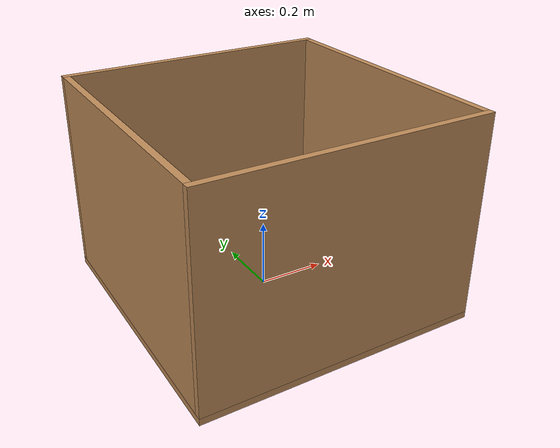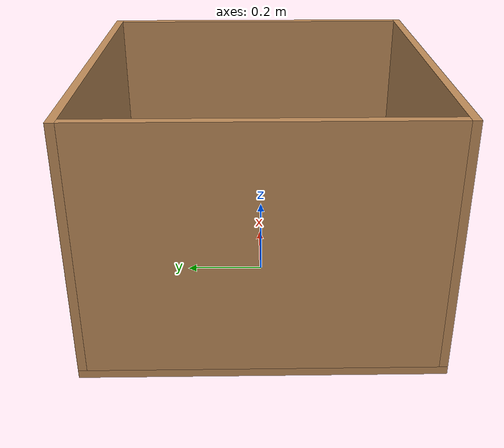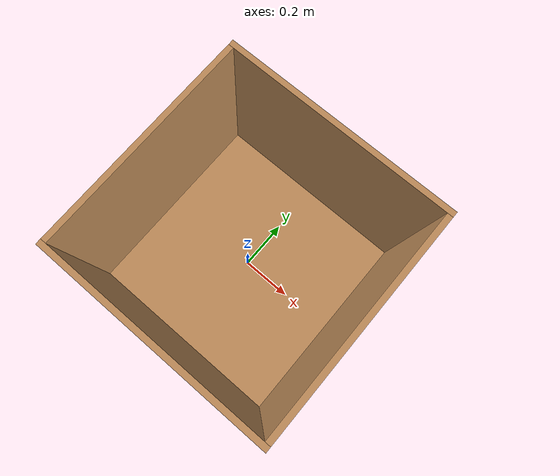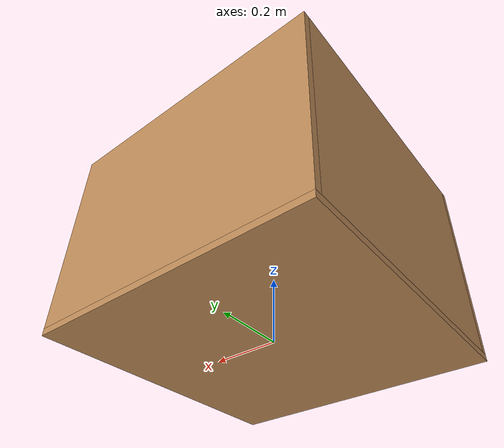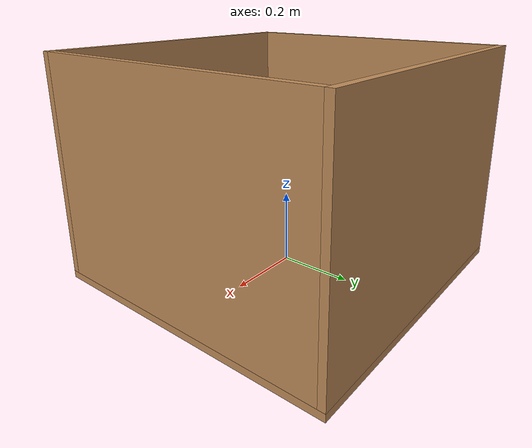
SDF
<?xml version="1.0"?>
<sdf version="1.7" xmlns:drake="http://drake.mit.edu">
  <model name="container">
    <!-- A box container with 4 walls and a floor, inner dimensions 0.8m x 0.8m x 0.6m -->
    <link name="container">
      <!-- Floor: 0.84 x 0.84 x 0.02, top surface at z=0 -->
      <visual name="floor_visual">
        <pose>0 0 -0.01 0 0 0</pose>
        <geometry>
          <box><size>0.84 0.84 0.02</size></box>
        </geometry>
        <material><diffuse>0.75 0.55 0.35 1.0</diffuse></material>
      </visual>
      <collision name="floor_collision">
        <pose>0 0 -0.01 0 0 0</pose>
        <geometry>
          <box><size>0.84 0.84 0.02</size></box>
        </geometry>
      </collision>

      <!-- +x wall -->
      <visual name="wall_px_visual">
        <pose>0.41 0 0.30 0 0 0</pose>
        <geometry>
          <box><size>0.02 0.80 0.60</size></box>
        </geometry>
        <material><diffuse>0.75 0.55 0.35 1.0</diffuse></material>
      </visual>
      <collision name="wall_px_collision">
        <pose>0.41 0 0.30 0 0 0</pose>
        <geometry>
          <box><size>0.02 0.80 0.60</size></box>
        </geometry>
      </collision>

      <!-- -x wall -->
      <visual name="wall_nx_visual">
        <pose>-0.41 0 0.30 0 0 0</pose>
        <geometry>
          <box><size>0.02 0.80 0.60</size></box>
        </geometry>
        <material><diffuse>0.75 0.55 0.35 1.0</diffuse></material>
      </visual>
      <collision name="wall_nx_collision">
        <pose>-0.41 0 0.30 0 0 0</pose>
        <geometry>
          <box><size>0.02 0.80 0.60</size></box>
        </geometry>
      </collision>

      <!-- +y wall -->
      <visual name="wall_py_visual">
        <pose>0 0.41 0.30 0 0 0</pose>
        <geometry>
          <box><size>0.84 0.02 0.60</size></box>
        </geometry>
        <material><diffuse>0.75 0.55 0.35 1.0</diffuse></material>
      </visual>
      <collision name="wall_py_collision">
        <pose>0 0.41 0.30 0 0 0</pose>
        <geometry>
          <box><size>0.84 0.02 0.60</size></box>
        </geometry>
      </collision>

      <!-- -y wall -->
      <visual name="wall_ny_visual">
        <pose>0 -0.41 0.30 0 0 0</pose>
        <geometry>
          <box><size>0.84 0.02 0.60</size></box>
        </geometry>
        <material><diffuse>0.75 0.55 0.35 1.0</diffuse></material>
      </visual>
      <collision name="wall_ny_collision">
        <pose>0 -0.41 0.30 0 0 0</pose>
        <geometry>
          <box><size>0.84 0.02 0.60</size></box>
        </geometry>
      </collision>
    </link>

    <joint name="container_joint" type="fixed">
      <parent>world</parent>
      <child>container</child>
    </joint>
  </model>
</sdf>
